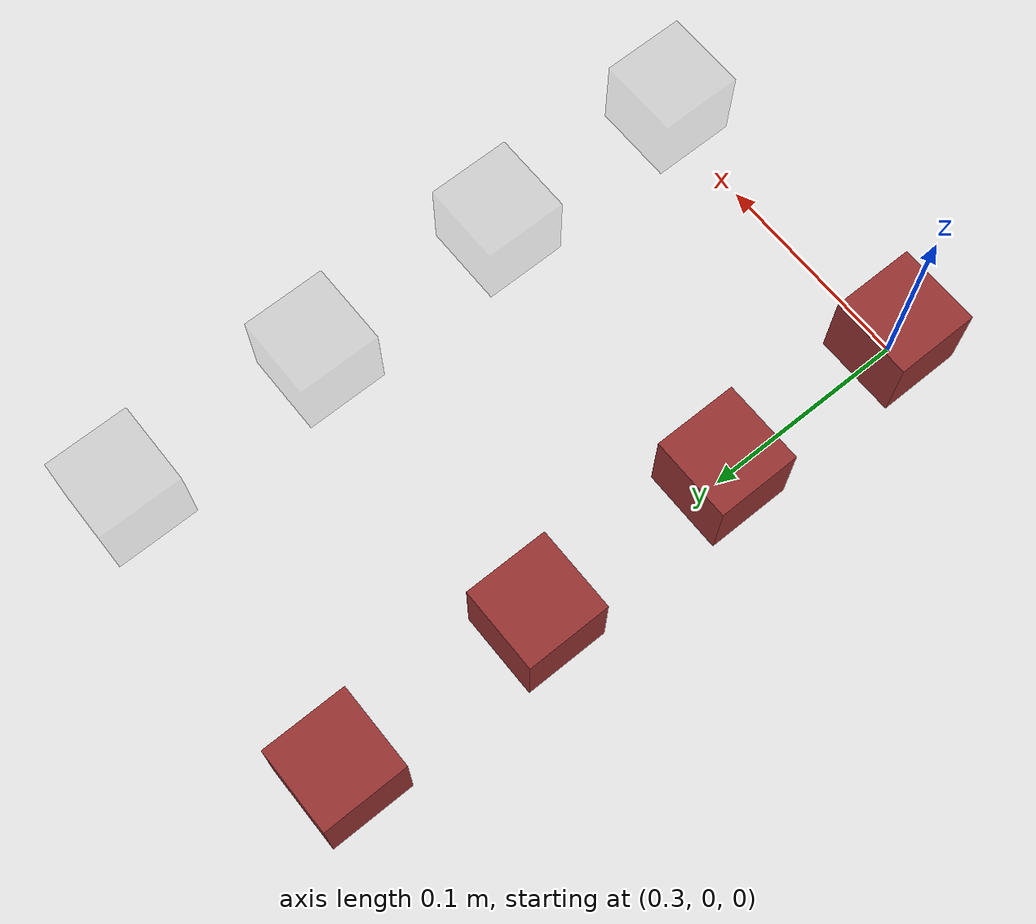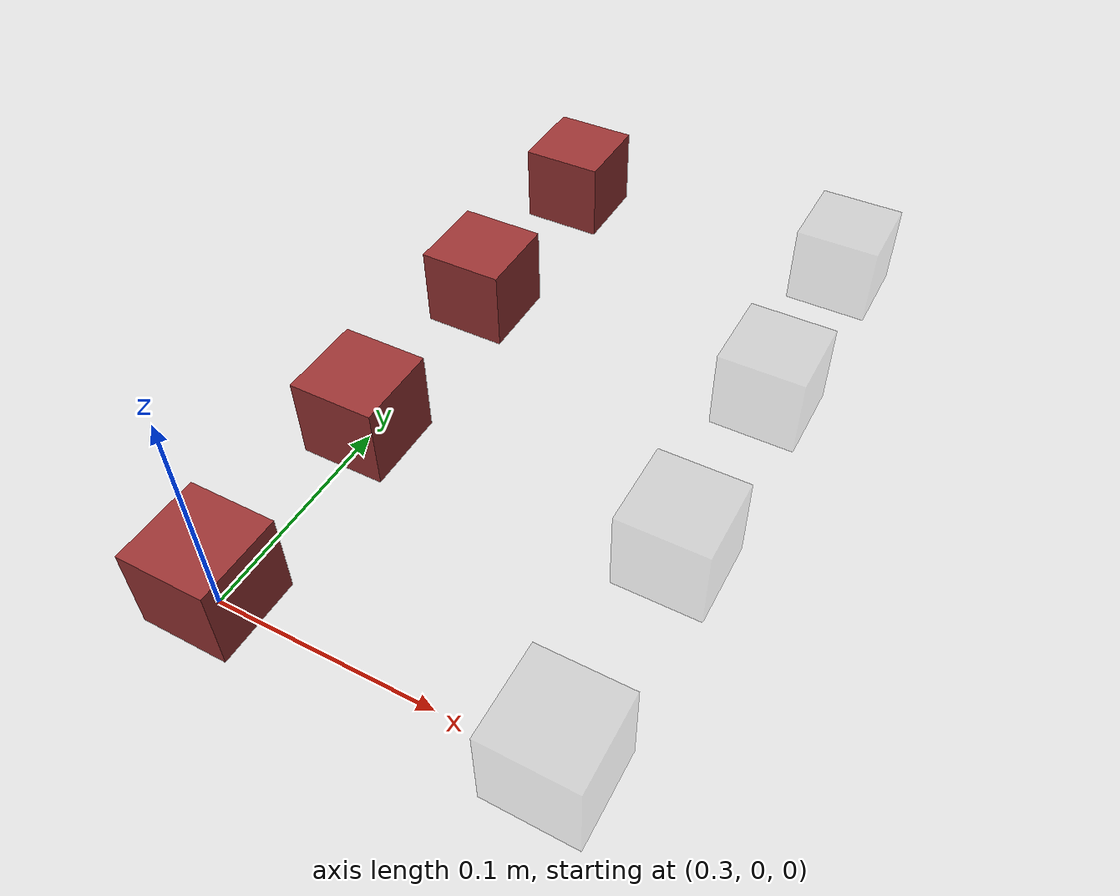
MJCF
<mujoco model="cube">
    <default>
        <default class="cube">
            <geom type="box" size="0.02 0.02 0.02" rgba=".6 .2 .2 1" density="1240" solref="0.004 1" contype="3"
                  group="1"/>
            <site type="sphere" size=".005" rgba="0 1 0 1" group="5"/>
        </default>
    </default>

    <worldbody>
        <body name="object_0" pos="0.3 0 .02">
            <freejoint name="object_joint_0"/>
            <geom name="object_0" class="cube"/>
            <site name="com_0" group="5"/>
        </body>
        <body name="object_1" pos="0.3 0.1 .02">
            <freejoint name="object_joint_1"/>
            <geom name="object_1" class="cube"/>
            <site name="com_1" group="5"/>
        </body>
        <body name="object_2" pos="0.3 0.2 .02">
            <freejoint name="object_joint_2"/>
            <geom name="object_2" class="cube"/>
            <site name="com_2" group="5"/>
        </body>
        <body name="object_3" pos="0.3 0.3 .02">
            <freejoint name="object_joint_3"/>
            <geom name="object_3" class="cube"/>
            <site name="com_3" group="5"/>
        </body>
        <body name="object_target_0" pos="0.45 0 .02" mocap="true">
            <geom name="target_object_0" class="cube" rgba=".5 .5 .5 .2" contype="0" conaffinity="0"/>
        </body>
        <body name="object_target_1" pos="0.45 0.1 .02" mocap="true">
            <geom name="target_object_1" class="cube" rgba=".5 .5 .5 .2" contype="0" conaffinity="0"/>
        </body>
        <body name="object_target_2" pos="0.45 0.2 .02" mocap="true">
            <geom name="target_object_2" class="cube" rgba=".5 .5 .5 .2" contype="0" conaffinity="0"/>
        </body>
        <body name="object_target_3" pos="0.45 0.3 .02" mocap="true">
            <geom name="target_object_3" class="cube" rgba=".5 .5 .5 .2" contype="0" conaffinity="0"/>
        </body>
    </worldbody>
</mujoco>
